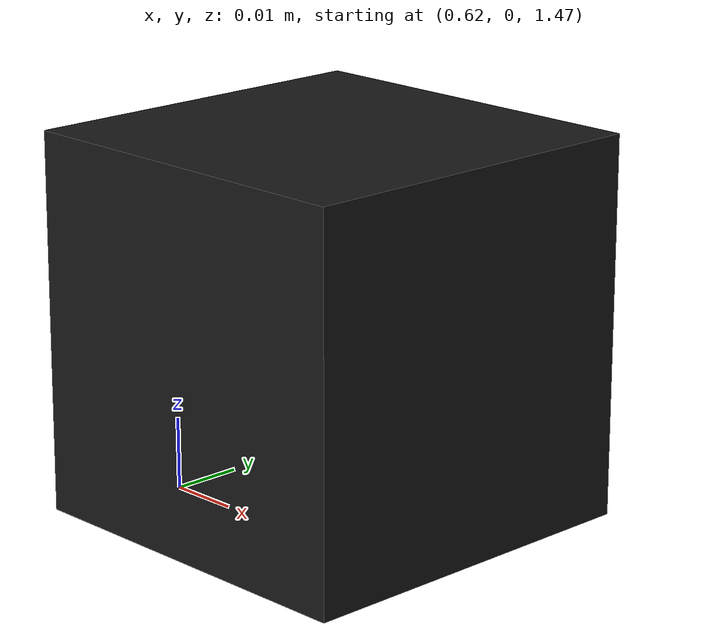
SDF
<?xml version="1.0" ?>
<sdf version="1.6">
  <model name="overhead_camera">
    <static>true</static>
    <!-- Positioned 1.5m high, centered over the table (x=0.65), pointing straight down (pitch = 1.5708 rad) -->
    <pose>0.65 0.0 1.5 0 1.5708 0</pose>

    <link name="link">
      <visual name="visual">
        <geometry>
          <box><size>0.05 0.05 0.05</size></box>
        </geometry>
        <material>
          <ambient>0.1 0.1 0.1 1</ambient>
          <diffuse>0.1 0.1 0.1 1</diffuse>
        </material>
      </visual>

      <sensor type="camera" name="overhead_camera">
        <always_on>true</always_on>
        <update_rate>30.0</update_rate>
        <visualize>true</visualize>
        <camera>
          <horizontal_fov>1.047</horizontal_fov>
          <image>
            <width>640</width>
            <height>480</height>
            <format>R8G8B8</format>
          </image>
          <clip>
            <near>0.1</near>
            <far>10.0</far>
          </clip>
        </camera>
        <plugin name="camera_driver" filename="libgazebo_ros_camera.so">
          <ros>
            <namespace>/overhead_camera</namespace>
            <remapping>image_raw:=image_raw</remapping>
            <remapping>camera_info:=camera_info</remapping>
          </ros>
          <camera_name>image_raw</camera_name>
          <frame_name>world</frame_name>
        </plugin>
      </sensor>
    </link>
  </model>
</sdf>
